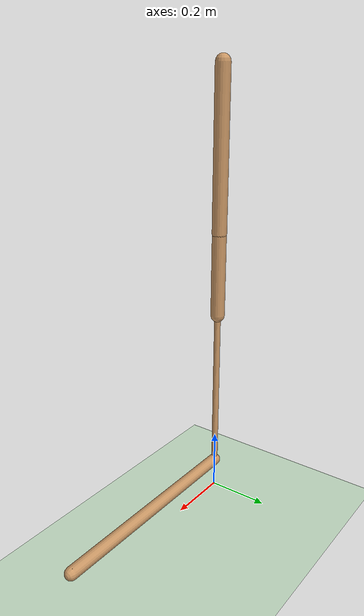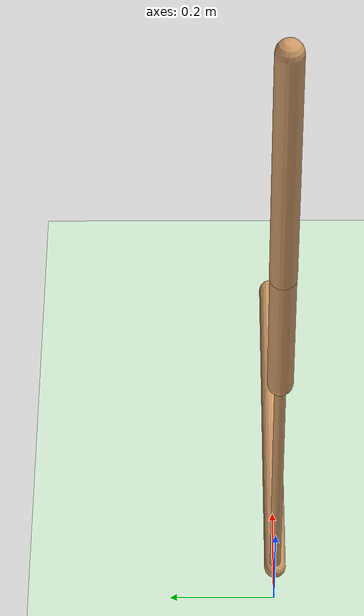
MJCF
<mujoco model="walker2d">
  <compiler angle="degree" inertiafromgeom="true" />
  <default>
    <joint armature="0.01" damping=".1" limited="true" />
    <geom conaffinity="0" condim="3" contype="1" density="1000" friction=".7 .1 .1" rgba="0.8 0.6 .4 1" />
  </default>
  <option integrator="RK4" timestep="0.002" />
  <worldbody>
    <light cutoff="100" diffuse="1 1 1" dir="-0 0 -1.3" directional="true" exponent="1" pos="0 0 1.3" specular=".1 .1 .1" />
    <geom conaffinity="1" condim="3" name="floor" pos="0 0 0" rgba="0.8 0.9 0.8 1" size="40 40 40" type="plane" material="MatPlane" />
    <body name="torso" pos="0 0 1.1707966089248658">
      <camera name="track" mode="trackcom" pos="0 -5 -1.25" xyaxes="1 0 0 0 0 1" />
      <joint armature="0" axis="1 0 0" damping="0" limited="false" name="rootx" pos="0 0 -1.25" stiffness="0" type="slide" />
      <joint armature="0" axis="0 0 1" damping="0" limited="false" name="rootz" pos="0 0 -1.25" ref="1.25" stiffness="0" type="slide" />
      <joint armature="0" axis="0 1 0" damping="0" limited="false" name="rooty" pos="0 0 0" stiffness="0" type="hinge" />
      <geom friction="0.9" name="torso_geom" size="0.023655535653233528 0.25275540351867676" type="capsule" />
      <body name="thigh" pos="0 0 -0.25275540351867676">
        <joint axis="0 -1 0" name="thigh_joint" pos="0 0 0" range="-150 0" type="hinge" />
        <site name="torso_thigh_site" pos="0 0 0" size="0.01" type="sphere" rgba="1 0 0 0.5" />
        <geom friction="0.9" pos="0 0 -0.13552647829055786" name="thigh_geom" size="0.02285991981625557 0.13552647829055786" type="capsule" />
        <body name="leg" pos="0 0 -0.5445470809936523">
          <joint axis="0 -1 0" name="leg_joint" pos="0 0 0.2734941244125366" range="-150 0" type="hinge" />
          <site name="thigh_leg_site" pos="0 0 0.25" size="0.01" type="sphere" rgba="1 0 0 0.5" />
          <geom friction="0.9" name="leg_geom" size="0.010194921866059303 0.2734941244125366" type="capsule" />
          <body name="foot" pos="0.7033476829528809 0 -0.3734941244125366">
            <joint axis="0 -1 0" name="foot_joint" pos="-0.7033476829528809 0 0.1" range="-45 45" type="hinge" />
            <site name="leg_foot_site" pos="-0.2 0 0.1" size="0.01" type="sphere" rgba="1 0 0 0.5" />
            <geom friction="0.9" pos="-0.35167384147644043 0 0.1" quat="0.70710678118654757 0 -0.70710678118654746 0" name="foot_geom" size="0.019938096404075623 0.35167384147644043" type="capsule" />
          </body>
        </body>
      </body>

      <body name="thigh_left" pos="0 0 -0.25275540351867676">
        <joint axis="0 -1 0" name="thigh_left_joint" pos="0 0 0" range="-150 0" type="hinge" />
        <site name="torso_thigh_left_site" pos="0 0 0" size="0.01" type="sphere" rgba="1 0 0 0.5" />
        <geom friction="0.9" name="thigh_left_geom" rgba=".7 .3 .6 1" size="0.02285991981625557 0.13552647829055786" pos="0 0 -0.13552647829055786" type="capsule" />
        <body name="leg_left" pos="0 0 -0.5445470809936523">
          <joint axis="0 -1 0" name="leg_left_joint" pos="0 0 0.2734941244125366" range="-150 0" type="hinge" />
          <site name="thigh_leg_left_site" pos="0 0 0.25" size="0.01" type="sphere" rgba="1 0 0 0.5" />
          <geom friction="0.9" name="leg_left_geom" rgba=".7 .3 .6 1" size="0.010194921866059303 0.2734941244125366" type="capsule" />
          <body name="foot_left" pos="0.7033476829528809 0 -0.3734941244125366">
            <joint axis="0 -1 0" name="foot_left_joint" pos="-0.7033476829528809 0 0.1" range="-45 45" type="hinge" />
            <site name="leg_foot_left_site" pos="-0.2 0 0.1" size="0.01" type="sphere" rgba="1 0 0 0.5" />
            <geom friction="1.9" name="foot_left_geom" rgba=".7 .3 .6 1" size="0.019938096404075623 0.35167384147644043" pos="-0.35167384147644043 0 0.1" type="capsule" quat="0.70710678118654757 0 -0.70710678118654746 0" />
          </body>
        </body>
      </body>
    </body>
  </worldbody>
  <actuator>

    <motor ctrllimited="true" ctrlrange="-1.0 1.0" gear="12.590733506699117" joint="thigh_joint" />
    <motor ctrllimited="true" ctrlrange="-1.0 1.0" gear="7.106500856190326" joint="leg_joint" />
    <motor ctrllimited="true" ctrlrange="-1.0 1.0" gear="38.8333581135966" joint="foot_joint" />
    <motor ctrllimited="true" ctrlrange="-1.0 1.0" gear="12.590733506699117" joint="thigh_left_joint" />
    <motor ctrllimited="true" ctrlrange="-1.0 1.0" gear="7.106500856190326" joint="leg_left_joint" />
    <motor ctrllimited="true" ctrlrange="-1.0 1.0" gear="38.8333581135966" joint="foot_left_joint" />

  </actuator>
    <asset>
        <texture type="skybox" builtin="gradient" rgb1=".4 .5 .6" rgb2="0 0 0" width="100" height="100" />
        <texture builtin="flat" height="1278" mark="cross" markrgb="1 1 1" name="texgeom" random="0.01" rgb1="0.8 0.6 0.4" rgb2="0.8 0.6 0.4" type="cube" width="127" />
        <texture builtin="checker" height="100" name="texplane" rgb1="0 0 0" rgb2="0.8 0.8 0.8" type="2d" width="100" />
        <material name="MatPlane" reflectance="0.5" shininess="1" specular="1" texrepeat="60 60" texture="texplane" />
        <material name="geom" texture="texgeom" texuniform="true" />
    </asset>

  <sensor>
    <force site="torso_thigh_site" name="torso_thigh_sensor" />
    <force site="thigh_leg_site" name="thigh_leg_sensor" />
    <force site="leg_foot_site" name="leg_foot_sensor" />
    <force site="torso_thigh_left_site" name="torso_thigh_left_sensor" />
    <force site="thigh_leg_left_site" name="thigh_leg_left_sensor" />
    <force site="leg_foot_left_site" name="leg_foot_left_sensor" />
  </sensor>
</mujoco>
